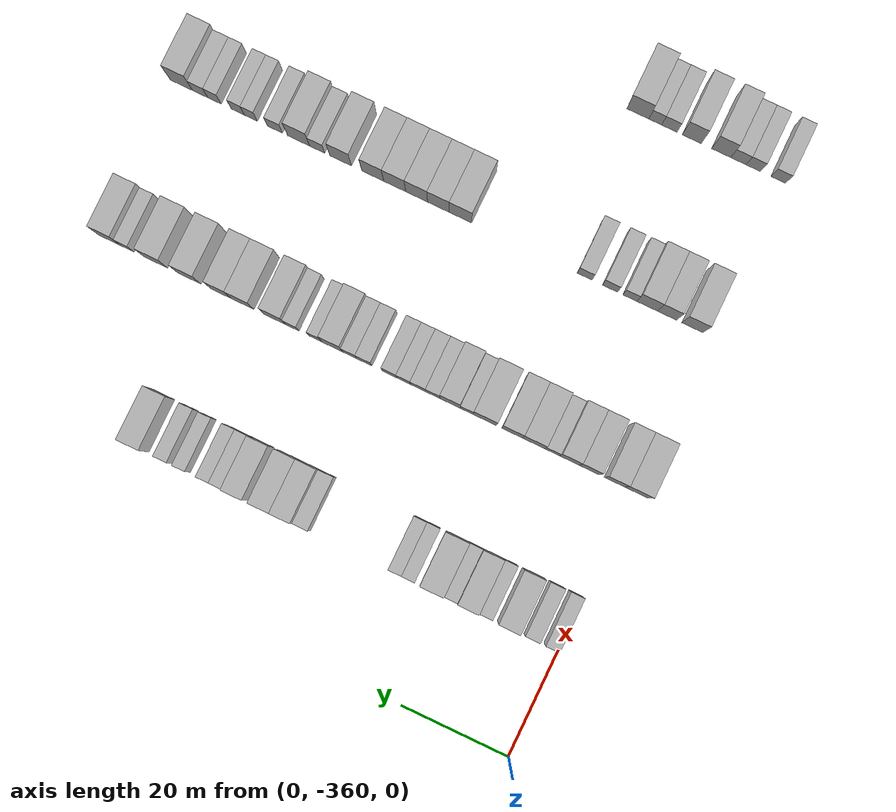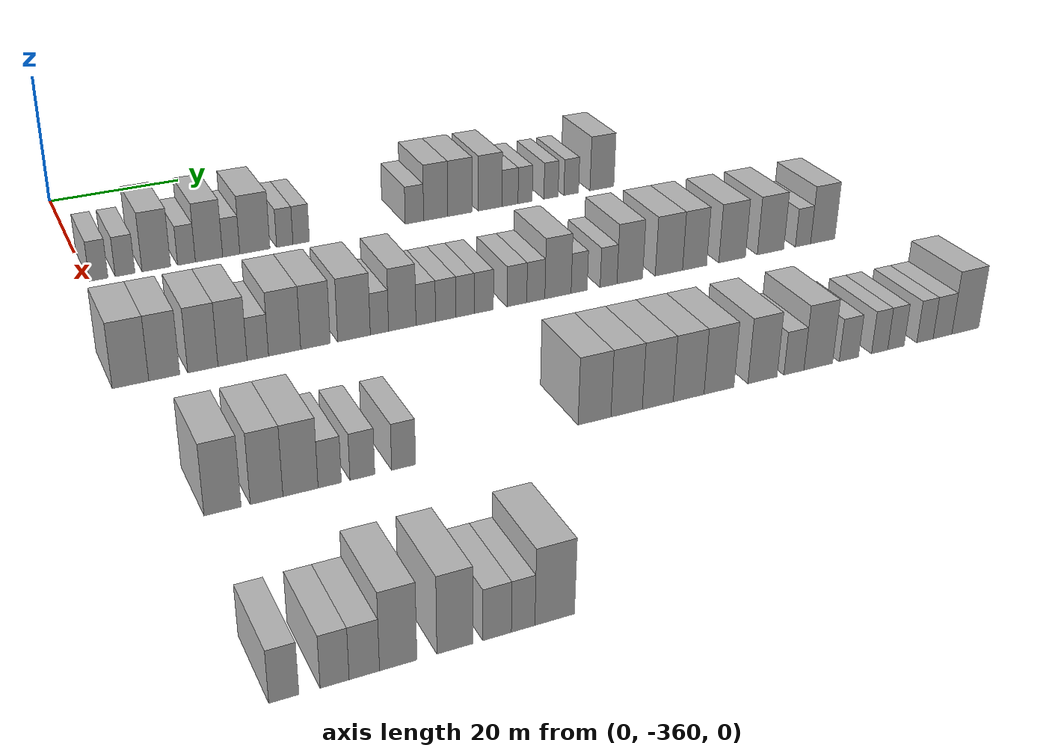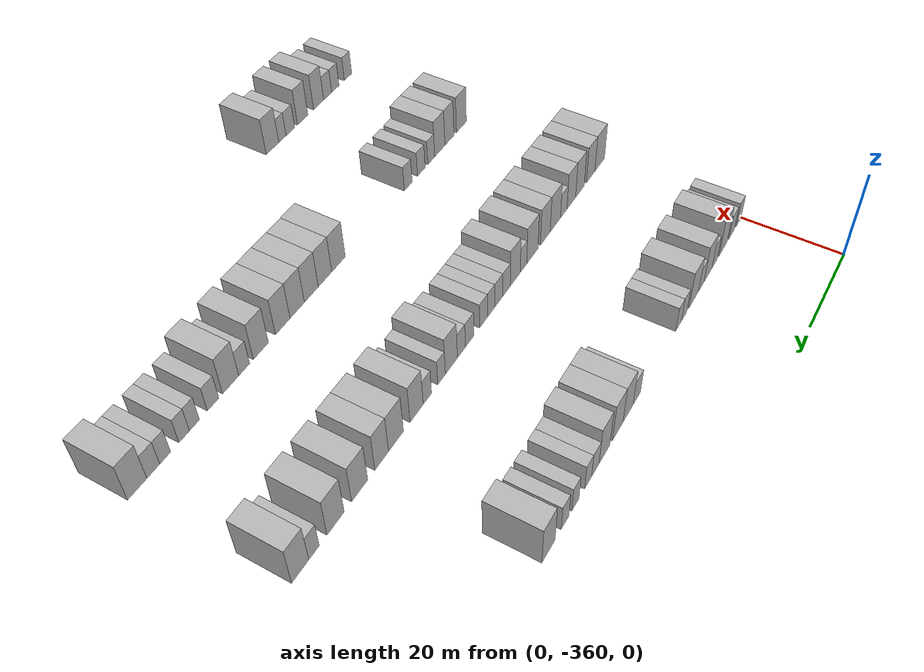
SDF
<sdf version="1.6">
 <world name="default">
  <model name="building_27">
   <static>1</static>
   <pose>25.0000 -358.4939 0 0.000000 0.000000 0.000000</pose>
   <link name="link">
    <pose>0 0 3.00 0 0 0</pose>
    <collision name="collision"><geometry><box><size>10.0000 2.5711 6.0000</size></box></geometry></collision>
    <visual name="visual">
     <cast_shadows>0</cast_shadows>
     <geometry><box><size>10.0000 2.5711 6.0000</size></box></geometry>
     <material>
      <script>
       <uri>model://HANNAS_wall/materials/scripts</uri>
       <uri>model://HANNAS_wall/materials/textures</uri>
       <name>vrc/HANNAS_wall</name>
      </script>
     </material>
    </visual>
   </link>
  </model>
  <model name="building_28">
   <static>1</static>
   <pose>25.0000 -354.8271 0 0.000000 0.000000 0.000000</pose>
   <link name="link">
    <pose>0 0 3.00 0 0 0</pose>
    <collision name="collision"><geometry><box><size>10.0000 2.7625 6.0000</size></box></geometry></collision>
    <visual name="visual">
     <cast_shadows>0</cast_shadows>
     <geometry><box><size>10.0000 2.7625 6.0000</size></box></geometry>
     <material>
      <script>
       <uri>model://HANNAS_wall/materials/scripts</uri>
       <uri>model://HANNAS_wall/materials/textures</uri>
       <name>vrc/HANNAS_wall</name>
      </script>
     </material>
    </visual>
   </link>
  </model>
  <model name="building_29">
   <static>1</static>
   <pose>25.0000 -350.4248 0 0.000000 0.000000 0.000000</pose>
   <link name="link">
    <pose>0 0 4.50 0 0 0</pose>
    <collision name="collision"><geometry><box><size>10.0000 4.0422 9.0000</size></box></geometry></collision>
    <visual name="visual">
     <cast_shadows>0</cast_shadows>
     <geometry><box><size>10.0000 4.0422 9.0000</size></box></geometry>
     <material>
      <script>
       <uri>model://HANNAS_wall/materials/scripts</uri>
       <uri>model://HANNAS_wall/materials/textures</uri>
       <name>vrc/HANNAS_wall</name>
      </script>
     </material>
    </visual>
   </link>
  </model>
  <model name="building_30">
   <static>1</static>
   <pose>25.0000 -346.1269 0 0.000000 0.000000 0.000000</pose>
   <link name="link">
    <pose>0 0 3.00 0 0 0</pose>
    <collision name="collision"><geometry><box><size>10.0000 2.5535 6.0000</size></box></geometry></collision>
    <visual name="visual">
     <cast_shadows>0</cast_shadows>
     <geometry><box><size>10.0000 2.5535 6.0000</size></box></geometry>
     <material>
      <script>
       <uri>model://HANNAS_wall/materials/scripts</uri>
       <uri>model://HANNAS_wall/materials/textures</uri>
       <name>vrc/HANNAS_wall</name>
      </script>
     </material>
    </visual>
   </link>
  </model>
  <model name="building_31">
   <static>1</static>
   <pose>25.0000 -342.8684 0 0.000000 0.000000 0.000000</pose>
   <link name="link">
    <pose>0 0 4.50 0 0 0</pose>
    <collision name="collision"><geometry><box><size>10.0000 3.9636 9.0000</size></box></geometry></collision>
    <visual name="visual">
     <cast_shadows>0</cast_shadows>
     <geometry><box><size>10.0000 3.9636 9.0000</size></box></geometry>
     <material>
      <script>
       <uri>model://HANNAS_wall/materials/scripts</uri>
       <uri>model://HANNAS_wall/materials/textures</uri>
       <name>vrc/HANNAS_wall</name>
      </script>
     </material>
    </visual>
   </link>
  </model>
  <model name="building_32">
   <static>1</static>
   <pose>25.0000 -339.6265 0 0.000000 0.000000 0.000000</pose>
   <link name="link">
    <pose>0 0 3.00 0 0 0</pose>
    <collision name="collision"><geometry><box><size>10.0000 2.5201 6.0000</size></box></geometry></collision>
    <visual name="visual">
     <cast_shadows>0</cast_shadows>
     <geometry><box><size>10.0000 2.5201 6.0000</size></box></geometry>
     <material>
      <script>
       <uri>model://HANNAS_wall/materials/scripts</uri>
       <uri>model://HANNAS_wall/materials/textures</uri>
       <name>vrc/HANNAS_wall</name>
      </script>
     </material>
    </visual>
   </link>
  </model>
  <model name="building_33">
   <static>1</static>
   <pose>25.0000 -336.1304 0 0.000000 0.000000 0.000000</pose>
   <link name="link">
    <pose>0 0 4.50 0 0 0</pose>
    <collision name="collision"><geometry><box><size>10.0000 4.4721 9.0000</size></box></geometry></collision>
    <visual name="visual">
     <cast_shadows>0</cast_shadows>
     <geometry><box><size>10.0000 4.4721 9.0000</size></box></geometry>
     <material>
      <script>
       <uri>model://HANNAS_wall/materials/scripts</uri>
       <uri>model://HANNAS_wall/materials/textures</uri>
       <name>vrc/HANNAS_wall</name>
      </script>
     </material>
    </visual>
   </link>
  </model>
  <model name="building_34">
   <static>1</static>
   <pose>25.0000 -331.6610 0 0.000000 0.000000 0.000000</pose>
   <link name="link">
    <pose>0 0 3.00 0 0 0</pose>
    <collision name="collision"><geometry><box><size>10.0000 2.4667 6.0000</size></box></geometry></collision>
    <visual name="visual">
     <cast_shadows>0</cast_shadows>
     <geometry><box><size>10.0000 2.4667 6.0000</size></box></geometry>
     <material>
      <script>
       <uri>model://HANNAS_wall/materials/scripts</uri>
       <uri>model://HANNAS_wall/materials/textures</uri>
       <name>vrc/HANNAS_wall</name>
      </script>
     </material>
    </visual>
   </link>
  </model>
  <model name="building_35">
   <static>1</static>
   <pose>25.0000 -329.1813 0 0.000000 0.000000 0.000000</pose>
   <link name="link">
    <pose>0 0 3.00 0 0 0</pose>
    <collision name="collision"><geometry><box><size>10.0000 2.4926 6.0000</size></box></geometry></collision>
    <visual name="visual">
     <cast_shadows>0</cast_shadows>
     <geometry><box><size>10.0000 2.4926 6.0000</size></box></geometry>
     <material>
      <script>
       <uri>model://HANNAS_wall/materials/scripts</uri>
       <uri>model://HANNAS_wall/materials/textures</uri>
       <name>vrc/HANNAS_wall</name>
      </script>
     </material>
    </visual>
   </link>
  </model>
  <model name="building_36">
   <static>1</static>
   <pose>25.0000 -311.4867 0 0.000000 0.000000 0.000000</pose>
   <link name="link">
    <pose>0 0 3.00 0 0 0</pose>
    <collision name="collision"><geometry><box><size>10.0000 2.9656 6.0000</size></box></geometry></collision>
    <visual name="visual">
     <cast_shadows>0</cast_shadows>
     <geometry><box><size>10.0000 2.9656 6.0000</size></box></geometry>
     <material>
      <script>
       <uri>model://HANNAS_wall/materials/scripts</uri>
       <uri>model://HANNAS_wall/materials/textures</uri>
       <name>vrc/HANNAS_wall</name>
      </script>
     </material>
    </visual>
   </link>
  </model>
  <model name="building_37">
   <static>1</static>
   <pose>25.0000 -308.0392 0 0.000000 0.000000 0.000000</pose>
   <link name="link">
    <pose>0 0 4.50 0 0 0</pose>
    <collision name="collision"><geometry><box><size>10.0000 3.9294 9.0000</size></box></geometry></collision>
    <visual name="visual">
     <cast_shadows>0</cast_shadows>
     <geometry><box><size>10.0000 3.9294 9.0000</size></box></geometry>
     <material>
      <script>
       <uri>model://HANNAS_wall/materials/scripts</uri>
       <uri>model://HANNAS_wall/materials/textures</uri>
       <name>vrc/HANNAS_wall</name>
      </script>
     </material>
    </visual>
   </link>
  </model>
  <model name="building_38">
   <static>1</static>
   <pose>25.0000 -304.0724 0 0.000000 0.000000 0.000000</pose>
   <link name="link">
    <pose>0 0 4.50 0 0 0</pose>
    <collision name="collision"><geometry><box><size>10.0000 4.0042 9.0000</size></box></geometry></collision>
    <visual name="visual">
     <cast_shadows>0</cast_shadows>
     <geometry><box><size>10.0000 4.0042 9.0000</size></box></geometry>
     <material>
      <script>
       <uri>model://HANNAS_wall/materials/scripts</uri>
       <uri>model://HANNAS_wall/materials/textures</uri>
       <name>vrc/HANNAS_wall</name>
      </script>
     </material>
    </visual>
   </link>
  </model>
  <model name="building_39">
   <static>1</static>
   <pose>25.0000 -299.0777 0 0.000000 0.000000 0.000000</pose>
   <link name="link">
    <pose>0 0 4.50 0 0 0</pose>
    <collision name="collision"><geometry><box><size>10.0000 3.9851 9.0000</size></box></geometry></collision>
    <visual name="visual">
     <cast_shadows>0</cast_shadows>
     <geometry><box><size>10.0000 3.9851 9.0000</size></box></geometry>
     <material>
      <script>
       <uri>model://HANNAS_wall/materials/scripts</uri>
       <uri>model://HANNAS_wall/materials/textures</uri>
       <name>vrc/HANNAS_wall</name>
      </script>
     </material>
    </visual>
   </link>
  </model>
  <model name="building_40">
   <static>1</static>
   <pose>25.0000 -295.7361 0 0.000000 0.000000 0.000000</pose>
   <link name="link">
    <pose>0 0 3.00 0 0 0</pose>
    <collision name="collision"><geometry><box><size>10.0000 2.6982 6.0000</size></box></geometry></collision>
    <visual name="visual">
     <cast_shadows>0</cast_shadows>
     <geometry><box><size>10.0000 2.6982 6.0000</size></box></geometry>
     <material>
      <script>
       <uri>model://HANNAS_wall/materials/scripts</uri>
       <uri>model://HANNAS_wall/materials/textures</uri>
       <name>vrc/HANNAS_wall</name>
      </script>
     </material>
    </visual>
   </link>
  </model>
  <model name="building_41">
   <static>1</static>
   <pose>25.0000 -293.1766 0 0.000000 0.000000 0.000000</pose>
   <link name="link">
    <pose>0 0 3.00 0 0 0</pose>
    <collision name="collision"><geometry><box><size>10.0000 2.4207 6.0000</size></box></geometry></collision>
    <visual name="visual">
     <cast_shadows>0</cast_shadows>
     <geometry><box><size>10.0000 2.4207 6.0000</size></box></geometry>
     <material>
      <script>
       <uri>model://HANNAS_wall/materials/scripts</uri>
       <uri>model://HANNAS_wall/materials/textures</uri>
       <name>vrc/HANNAS_wall</name>
      </script>
     </material>
    </visual>
   </link>
  </model>
  <model name="building_42">
   <static>1</static>
   <pose>25.0000 -288.7385 0 0.000000 0.000000 0.000000</pose>
   <link name="link">
    <pose>0 0 3.00 0 0 0</pose>
    <collision name="collision"><geometry><box><size>10.0000 2.4556 6.0000</size></box></geometry></collision>
    <visual name="visual">
     <cast_shadows>0</cast_shadows>
     <geometry><box><size>10.0000 2.4556 6.0000</size></box></geometry>
     <material>
      <script>
       <uri>model://HANNAS_wall/materials/scripts</uri>
       <uri>model://HANNAS_wall/materials/textures</uri>
       <name>vrc/HANNAS_wall</name>
      </script>
     </material>
    </visual>
   </link>
  </model>
  <model name="building_43">
   <static>1</static>
   <pose>25.0000 -285.2317 0 0.000000 0.000000 0.000000</pose>
   <link name="link">
    <pose>0 0 3.00 0 0 0</pose>
    <collision name="collision"><geometry><box><size>10.0000 2.5578 6.0000</size></box></geometry></collision>
    <visual name="visual">
     <cast_shadows>0</cast_shadows>
     <geometry><box><size>10.0000 2.5578 6.0000</size></box></geometry>
     <material>
      <script>
       <uri>model://HANNAS_wall/materials/scripts</uri>
       <uri>model://HANNAS_wall/materials/textures</uri>
       <name>vrc/HANNAS_wall</name>
      </script>
     </material>
    </visual>
   </link>
  </model>
  <model name="building_44">
   <static>1</static>
   <pose>25.0000 -279.8387 0 0.000000 0.000000 0.000000</pose>
   <link name="link">
    <pose>0 0 4.50 0 0 0</pose>
    <collision name="collision"><geometry><box><size>10.0000 4.2283 9.0000</size></box></geometry></collision>
    <visual name="visual">
     <cast_shadows>0</cast_shadows>
     <geometry><box><size>10.0000 4.2283 9.0000</size></box></geometry>
     <material>
      <script>
       <uri>model://HANNAS_wall/materials/scripts</uri>
       <uri>model://HANNAS_wall/materials/textures</uri>
       <name>vrc/HANNAS_wall</name>
      </script>
     </material>
    </visual>
   </link>
  </model>
  <model name="building_251">
   <static>1</static>
   <pose>55.0000 -360.5442 0 0.000000 0.000000 0.000000</pose>
   <link name="link">
    <pose>0 0 4.50 0 0 0</pose>
    <collision name="collision"><geometry><box><size>10.0000 4.4710 9.0000</size></box></geometry></collision>
    <visual name="visual">
     <cast_shadows>0</cast_shadows>
     <geometry><box><size>10.0000 4.4710 9.0000</size></box></geometry>
     <material>
      <script>
       <uri>model://HANNAS_wall/materials/scripts</uri>
       <uri>model://HANNAS_wall/materials/textures</uri>
       <name>vrc/HANNAS_wall</name>
      </script>
     </material>
    </visual>
   </link>
  </model>
  <model name="building_252">
   <static>1</static>
   <pose>55.0000 -356.3869 0 0.000000 0.000000 0.000000</pose>
   <link name="link">
    <pose>0 0 4.50 0 0 0</pose>
    <collision name="collision"><geometry><box><size>10.0000 3.8437 9.0000</size></box></geometry></collision>
    <visual name="visual">
     <cast_shadows>0</cast_shadows>
     <geometry><box><size>10.0000 3.8437 9.0000</size></box></geometry>
     <material>
      <script>
       <uri>model://HANNAS_wall/materials/scripts</uri>
       <uri>model://HANNAS_wall/materials/textures</uri>
       <name>vrc/HANNAS_wall</name>
      </script>
     </material>
    </visual>
   </link>
  </model>
  <model name="building_253">
   <static>1</static>
   <pose>55.0000 -351.5558 0 0.000000 0.000000 0.000000</pose>
   <link name="link">
    <pose>0 0 4.50 0 0 0</pose>
    <collision name="collision"><geometry><box><size>10.0000 3.8184 9.0000</size></box></geometry></collision>
    <visual name="visual">
     <cast_shadows>0</cast_shadows>
     <geometry><box><size>10.0000 3.8184 9.0000</size></box></geometry>
     <material>
      <script>
       <uri>model://HANNAS_wall/materials/scripts</uri>
       <uri>model://HANNAS_wall/materials/textures</uri>
       <name>vrc/HANNAS_wall</name>
      </script>
     </material>
    </visual>
   </link>
  </model>
  <model name="building_254">
   <static>1</static>
   <pose>55.0000 -347.7819 0 0.000000 0.000000 0.000000</pose>
   <link name="link">
    <pose>0 0 4.50 0 0 0</pose>
    <collision name="collision"><geometry><box><size>10.0000 3.7295 9.0000</size></box></geometry></collision>
    <visual name="visual">
     <cast_shadows>0</cast_shadows>
     <geometry><box><size>10.0000 3.7295 9.0000</size></box></geometry>
     <material>
      <script>
       <uri>model://HANNAS_wall/materials/scripts</uri>
       <uri>model://HANNAS_wall/materials/textures</uri>
       <name>vrc/HANNAS_wall</name>
      </script>
     </material>
    </visual>
   </link>
  </model>
  <model name="building_255">
   <static>1</static>
   <pose>55.0000 -344.5236 0 0.000000 0.000000 0.000000</pose>
   <link name="link">
    <pose>0 0 3.00 0 0 0</pose>
    <collision name="collision"><geometry><box><size>10.0000 2.7870 6.0000</size></box></geometry></collision>
    <visual name="visual">
     <cast_shadows>0</cast_shadows>
     <geometry><box><size>10.0000 2.7870 6.0000</size></box></geometry>
     <material>
      <script>
       <uri>model://HANNAS_wall/materials/scripts</uri>
       <uri>model://HANNAS_wall/materials/textures</uri>
       <name>vrc/HANNAS_wall</name>
      </script>
     </material>
    </visual>
   </link>
  </model>
  <model name="building_256">
   <static>1</static>
   <pose>55.0000 -341.0157 0 0.000000 0.000000 0.000000</pose>
   <link name="link">
    <pose>0 0 4.50 0 0 0</pose>
    <collision name="collision"><geometry><box><size>10.0000 4.2286 9.0000</size></box></geometry></collision>
    <visual name="visual">
     <cast_shadows>0</cast_shadows>
     <geometry><box><size>10.0000 4.2286 9.0000</size></box></geometry>
     <material>
      <script>
       <uri>model://HANNAS_wall/materials/scripts</uri>
       <uri>model://HANNAS_wall/materials/textures</uri>
       <name>vrc/HANNAS_wall</name>
      </script>
     </material>
    </visual>
   </link>
  </model>
  <model name="building_257">
   <static>1</static>
   <pose>55.0000 -336.9286 0 0.000000 0.000000 0.000000</pose>
   <link name="link">
    <pose>0 0 4.50 0 0 0</pose>
    <collision name="collision"><geometry><box><size>10.0000 3.9457 9.0000</size></box></geometry></collision>
    <visual name="visual">
     <cast_shadows>0</cast_shadows>
     <geometry><box><size>10.0000 3.9457 9.0000</size></box></geometry>
     <material>
      <script>
       <uri>model://HANNAS_wall/materials/scripts</uri>
       <uri>model://HANNAS_wall/materials/textures</uri>
       <name>vrc/HANNAS_wall</name>
      </script>
     </material>
    </visual>
   </link>
  </model>
  <model name="building_258">
   <static>1</static>
   <pose>55.0000 -331.7339 0 0.000000 0.000000 0.000000</pose>
   <link name="link">
    <pose>0 0 4.50 0 0 0</pose>
    <collision name="collision"><geometry><box><size>10.0000 4.4437 9.0000</size></box></geometry></collision>
    <visual name="visual">
     <cast_shadows>0</cast_shadows>
     <geometry><box><size>10.0000 4.4437 9.0000</size></box></geometry>
     <material>
      <script>
       <uri>model://HANNAS_wall/materials/scripts</uri>
       <uri>model://HANNAS_wall/materials/textures</uri>
       <name>vrc/HANNAS_wall</name>
      </script>
     </material>
    </visual>
   </link>
  </model>
  <model name="building_259">
   <static>1</static>
   <pose>55.0000 -328.2517 0 0.000000 0.000000 0.000000</pose>
   <link name="link">
    <pose>0 0 3.00 0 0 0</pose>
    <collision name="collision"><geometry><box><size>10.0000 2.5207 6.0000</size></box></geometry></collision>
    <visual name="visual">
     <cast_shadows>0</cast_shadows>
     <geometry><box><size>10.0000 2.5207 6.0000</size></box></geometry>
     <material>
      <script>
       <uri>model://HANNAS_wall/materials/scripts</uri>
       <uri>model://HANNAS_wall/materials/textures</uri>
       <name>vrc/HANNAS_wall</name>
      </script>
     </material>
    </visual>
   </link>
  </model>
  <model name="building_260">
   <static>1</static>
   <pose>55.0000 -325.0816 0 0.000000 0.000000 0.000000</pose>
   <link name="link">
    <pose>0 0 4.50 0 0 0</pose>
    <collision name="collision"><geometry><box><size>10.0000 3.8196 9.0000</size></box></geometry></collision>
    <visual name="visual">
     <cast_shadows>0</cast_shadows>
     <geometry><box><size>10.0000 3.8196 9.0000</size></box></geometry>
     <material>
      <script>
       <uri>model://HANNAS_wall/materials/scripts</uri>
       <uri>model://HANNAS_wall/materials/textures</uri>
       <name>vrc/HANNAS_wall</name>
      </script>
     </material>
    </visual>
   </link>
  </model>
  <model name="building_261">
   <static>1</static>
   <pose>55.0000 -321.7924 0 0.000000 0.000000 0.000000</pose>
   <link name="link">
    <pose>0 0 3.00 0 0 0</pose>
    <collision name="collision"><geometry><box><size>10.0000 2.7588 6.0000</size></box></geometry></collision>
    <visual name="visual">
     <cast_shadows>0</cast_shadows>
     <geometry><box><size>10.0000 2.7588 6.0000</size></box></geometry>
     <material>
      <script>
       <uri>model://HANNAS_wall/materials/scripts</uri>
       <uri>model://HANNAS_wall/materials/textures</uri>
       <name>vrc/HANNAS_wall</name>
      </script>
     </material>
    </visual>
   </link>
  </model>
  <model name="building_262">
   <static>1</static>
   <pose>55.0000 -318.9619 0 0.000000 0.000000 0.000000</pose>
   <link name="link">
    <pose>0 0 3.00 0 0 0</pose>
    <collision name="collision"><geometry><box><size>10.0000 2.9023 6.0000</size></box></geometry></collision>
    <visual name="visual">
     <cast_shadows>0</cast_shadows>
     <geometry><box><size>10.0000 2.9023 6.0000</size></box></geometry>
     <material>
      <script>
       <uri>model://HANNAS_wall/materials/scripts</uri>
       <uri>model://HANNAS_wall/materials/textures</uri>
       <name>vrc/HANNAS_wall</name>
      </script>
     </material>
    </visual>
   </link>
  </model>
  <model name="building_263">
   <static>1</static>
   <pose>55.0000 -316.1959 0 0.000000 0.000000 0.000000</pose>
   <link name="link">
    <pose>0 0 3.00 0 0 0</pose>
    <collision name="collision"><geometry><box><size>10.0000 2.6298 6.0000</size></box></geometry></collision>
    <visual name="visual">
     <cast_shadows>0</cast_shadows>
     <geometry><box><size>10.0000 2.6298 6.0000</size></box></geometry>
     <material>
      <script>
       <uri>model://HANNAS_wall/materials/scripts</uri>
       <uri>model://HANNAS_wall/materials/textures</uri>
       <name>vrc/HANNAS_wall</name>
      </script>
     </material>
    </visual>
   </link>
  </model>
  <model name="building_264">
   <static>1</static>
   <pose>55.0000 -313.4813 0 0.000000 0.000000 0.000000</pose>
   <link name="link">
    <pose>0 0 3.00 0 0 0</pose>
    <collision name="collision"><geometry><box><size>10.0000 2.7992 6.0000</size></box></geometry></collision>
    <visual name="visual">
     <cast_shadows>0</cast_shadows>
     <geometry><box><size>10.0000 2.7992 6.0000</size></box></geometry>
     <material>
      <script>
       <uri>model://HANNAS_wall/materials/scripts</uri>
       <uri>model://HANNAS_wall/materials/textures</uri>
       <name>vrc/HANNAS_wall</name>
      </script>
     </material>
    </visual>
   </link>
  </model>
  <model name="building_265">
   <static>1</static>
   <pose>55.0000 -308.6234 0 0.000000 0.000000 0.000000</pose>
   <link name="link">
    <pose>0 0 3.00 0 0 0</pose>
    <collision name="collision"><geometry><box><size>10.0000 2.9167 6.0000</size></box></geometry></collision>
    <visual name="visual">
     <cast_shadows>0</cast_shadows>
     <geometry><box><size>10.0000 2.9167 6.0000</size></box></geometry>
     <material>
      <script>
       <uri>model://HANNAS_wall/materials/scripts</uri>
       <uri>model://HANNAS_wall/materials/textures</uri>
       <name>vrc/HANNAS_wall</name>
      </script>
     </material>
    </visual>
   </link>
  </model>
  <model name="building_266">
   <static>1</static>
   <pose>55.0000 -305.8129 0 0.000000 0.000000 0.000000</pose>
   <link name="link">
    <pose>0 0 3.00 0 0 0</pose>
    <collision name="collision"><geometry><box><size>10.0000 2.7043 6.0000</size></box></geometry></collision>
    <visual name="visual">
     <cast_shadows>0</cast_shadows>
     <geometry><box><size>10.0000 2.7043 6.0000</size></box></geometry>
     <material>
      <script>
       <uri>model://HANNAS_wall/materials/scripts</uri>
       <uri>model://HANNAS_wall/materials/textures</uri>
       <name>vrc/HANNAS_wall</name>
      </script>
     </material>
    </visual>
   </link>
  </model>
  <model name="building_267">
   <static>1</static>
   <pose>55.0000 -302.4779 0 0.000000 0.000000 0.000000</pose>
   <link name="link">
    <pose>0 0 4.50 0 0 0</pose>
    <collision name="collision"><geometry><box><size>10.0000 3.9658 9.0000</size></box></geometry></collision>
    <visual name="visual">
     <cast_shadows>0</cast_shadows>
     <geometry><box><size>10.0000 3.9658 9.0000</size></box></geometry>
     <material>
      <script>
       <uri>model://HANNAS_wall/materials/scripts</uri>
       <uri>model://HANNAS_wall/materials/textures</uri>
       <name>vrc/HANNAS_wall</name>
      </script>
     </material>
    </visual>
   </link>
  </model>
  <model name="building_268">
   <static>1</static>
   <pose>55.0000 -299.2690 0 0.000000 0.000000 0.000000</pose>
   <link name="link">
    <pose>0 0 3.00 0 0 0</pose>
    <collision name="collision"><geometry><box><size>10.0000 2.4519 6.0000</size></box></geometry></collision>
    <visual name="visual">
     <cast_shadows>0</cast_shadows>
     <geometry><box><size>10.0000 2.4519 6.0000</size></box></geometry>
     <material>
      <script>
       <uri>model://HANNAS_wall/materials/scripts</uri>
       <uri>model://HANNAS_wall/materials/textures</uri>
       <name>vrc/HANNAS_wall</name>
      </script>
     </material>
    </visual>
   </link>
  </model>
  <model name="building_269">
   <static>1</static>
   <pose>55.0000 -294.7347 0 0.000000 0.000000 0.000000</pose>
   <link name="link">
    <pose>0 0 3.00 0 0 0</pose>
    <collision name="collision"><geometry><box><size>10.0000 2.6168 6.0000</size></box></geometry></collision>
    <visual name="visual">
     <cast_shadows>0</cast_shadows>
     <geometry><box><size>10.0000 2.6168 6.0000</size></box></geometry>
     <material>
      <script>
       <uri>model://HANNAS_wall/materials/scripts</uri>
       <uri>model://HANNAS_wall/materials/textures</uri>
       <name>vrc/HANNAS_wall</name>
      </script>
     </material>
    </visual>
   </link>
  </model>
  <model name="building_270">
   <static>1</static>
   <pose>55.0000 -291.4096 0 0.000000 0.000000 0.000000</pose>
   <link name="link">
    <pose>0 0 4.50 0 0 0</pose>
    <collision name="collision"><geometry><box><size>10.0000 4.0334 9.0000</size></box></geometry></collision>
    <visual name="visual">
     <cast_shadows>0</cast_shadows>
     <geometry><box><size>10.0000 4.0334 9.0000</size></box></geometry>
     <material>
      <script>
       <uri>model://HANNAS_wall/materials/scripts</uri>
       <uri>model://HANNAS_wall/materials/textures</uri>
       <name>vrc/HANNAS_wall</name>
      </script>
     </material>
    </visual>
   </link>
  </model>
  <model name="building_271">
   <static>1</static>
   <pose>55.0000 -285.2001 0 0.000000 0.000000 0.000000</pose>
   <link name="link">
    <pose>0 0 4.50 0 0 0</pose>
    <collision name="collision"><geometry><box><size>10.0000 4.3858 9.0000</size></box></geometry></collision>
    <visual name="visual">
     <cast_shadows>0</cast_shadows>
     <geometry><box><size>10.0000 4.3858 9.0000</size></box></geometry>
     <material>
      <script>
       <uri>model://HANNAS_wall/materials/scripts</uri>
       <uri>model://HANNAS_wall/materials/textures</uri>
       <name>vrc/HANNAS_wall</name>
      </script>
     </material>
    </visual>
   </link>
  </model>
  <model name="building_272">
   <static>1</static>
   <pose>55.0000 -281.0429 0 0.000000 0.000000 0.000000</pose>
   <link name="link">
    <pose>0 0 4.50 0 0 0</pose>
    <collision name="collision"><geometry><box><size>10.0000 3.9286 9.0000</size></box></geometry></collision>
    <visual name="visual">
     <cast_shadows>0</cast_shadows>
     <geometry><box><size>10.0000 3.9286 9.0000</size></box></geometry>
     <material>
      <script>
       <uri>model://HANNAS_wall/materials/scripts</uri>
       <uri>model://HANNAS_wall/materials/textures</uri>
       <name>vrc/HANNAS_wall</name>
      </script>
     </material>
    </visual>
   </link>
  </model>
  <model name="building_273">
   <static>1</static>
   <pose>55.0000 -274.8679 0 0.000000 0.000000 0.000000</pose>
   <link name="link">
    <pose>0 0 4.50 0 0 0</pose>
    <collision name="collision"><geometry><box><size>10.0000 4.4213 9.0000</size></box></geometry></collision>
    <visual name="visual">
     <cast_shadows>0</cast_shadows>
     <geometry><box><size>10.0000 4.4213 9.0000</size></box></geometry>
     <material>
      <script>
       <uri>model://HANNAS_wall/materials/scripts</uri>
       <uri>model://HANNAS_wall/materials/textures</uri>
       <name>vrc/HANNAS_wall</name>
      </script>
     </material>
    </visual>
   </link>
  </model>
  <model name="building_274">
   <static>1</static>
   <pose>55.0000 -268.4157 0 0.000000 0.000000 0.000000</pose>
   <link name="link">
    <pose>0 0 4.50 0 0 0</pose>
    <collision name="collision"><geometry><box><size>10.0000 4.4831 9.0000</size></box></geometry></collision>
    <visual name="visual">
     <cast_shadows>0</cast_shadows>
     <geometry><box><size>10.0000 4.4831 9.0000</size></box></geometry>
     <material>
      <script>
       <uri>model://HANNAS_wall/materials/scripts</uri>
       <uri>model://HANNAS_wall/materials/textures</uri>
       <name>vrc/HANNAS_wall</name>
      </script>
     </material>
    </visual>
   </link>
  </model>
  <model name="building_275">
   <static>1</static>
   <pose>55.0000 -262.8561 0 0.000000 0.000000 0.000000</pose>
   <link name="link">
    <pose>0 0 3.00 0 0 0</pose>
    <collision name="collision"><geometry><box><size>10.0000 2.6362 6.0000</size></box></geometry></collision>
    <visual name="visual">
     <cast_shadows>0</cast_shadows>
     <geometry><box><size>10.0000 2.6362 6.0000</size></box></geometry>
     <material>
      <script>
       <uri>model://HANNAS_wall/materials/scripts</uri>
       <uri>model://HANNAS_wall/materials/textures</uri>
       <name>vrc/HANNAS_wall</name>
      </script>
     </material>
    </visual>
   </link>
  </model>
  <model name="building_276">
   <static>1</static>
   <pose>55.0000 -259.4264 0 0.000000 0.000000 0.000000</pose>
   <link name="link">
    <pose>0 0 4.50 0 0 0</pose>
    <collision name="collision"><geometry><box><size>10.0000 4.2232 9.0000</size></box></geometry></collision>
    <visual name="visual">
     <cast_shadows>0</cast_shadows>
     <geometry><box><size>10.0000 4.2232 9.0000</size></box></geometry>
     <material>
      <script>
       <uri>model://HANNAS_wall/materials/scripts</uri>
       <uri>model://HANNAS_wall/materials/textures</uri>
       <name>vrc/HANNAS_wall</name>
      </script>
     </material>
    </visual>
   </link>
  </model>
  <model name="building_484">
   <static>1</static>
   <pose>85.0000 -357.2156 0 0.000000 0.000000 0.000000</pose>
   <link name="link">
    <pose>0 0 4.50 0 0 0</pose>
    <collision name="collision"><geometry><box><size>10.0000 4.0480 9.0000</size></box></geometry></collision>
    <visual name="visual">
     <cast_shadows>0</cast_shadows>
     <geometry><box><size>10.0000 4.0480 9.0000</size></box></geometry>
     <material>
      <script>
       <uri>model://HANNAS_wall/materials/scripts</uri>
       <uri>model://HANNAS_wall/materials/textures</uri>
       <name>vrc/HANNAS_wall</name>
      </script>
     </material>
    </visual>
   </link>
  </model>
  <model name="building_485">
   <static>1</static>
   <pose>85.0000 -352.3689 0 0.000000 0.000000 0.000000</pose>
   <link name="link">
    <pose>0 0 4.50 0 0 0</pose>
    <collision name="collision"><geometry><box><size>10.0000 3.6452 9.0000</size></box></geometry></collision>
    <visual name="visual">
     <cast_shadows>0</cast_shadows>
     <geometry><box><size>10.0000 3.6452 9.0000</size></box></geometry>
     <material>
      <script>
       <uri>model://HANNAS_wall/materials/scripts</uri>
       <uri>model://HANNAS_wall/materials/textures</uri>
       <name>vrc/HANNAS_wall</name>
      </script>
     </material>
    </visual>
   </link>
  </model>
  <model name="building_486">
   <static>1</static>
   <pose>85.0000 -348.5547 0 0.000000 0.000000 0.000000</pose>
   <link name="link">
    <pose>0 0 4.50 0 0 0</pose>
    <collision name="collision"><geometry><box><size>10.0000 3.9834 9.0000</size></box></geometry></collision>
    <visual name="visual">
     <cast_shadows>0</cast_shadows>
     <geometry><box><size>10.0000 3.9834 9.0000</size></box></geometry>
     <material>
      <script>
       <uri>model://HANNAS_wall/materials/scripts</uri>
       <uri>model://HANNAS_wall/materials/textures</uri>
       <name>vrc/HANNAS_wall</name>
      </script>
     </material>
    </visual>
   </link>
  </model>
  <model name="building_487">
   <static>1</static>
   <pose>85.0000 -345.2295 0 0.000000 0.000000 0.000000</pose>
   <link name="link">
    <pose>0 0 3.00 0 0 0</pose>
    <collision name="collision"><geometry><box><size>10.0000 2.6670 6.0000</size></box></geometry></collision>
    <visual name="visual">
     <cast_shadows>0</cast_shadows>
     <geometry><box><size>10.0000 2.6670 6.0000</size></box></geometry>
     <material>
      <script>
       <uri>model://HANNAS_wall/materials/scripts</uri>
       <uri>model://HANNAS_wall/materials/textures</uri>
       <name>vrc/HANNAS_wall</name>
      </script>
     </material>
    </visual>
   </link>
  </model>
  <model name="building_488">
   <static>1</static>
   <pose>85.0000 -341.4495 0 0.000000 0.000000 0.000000</pose>
   <link name="link">
    <pose>0 0 3.00 0 0 0</pose>
    <collision name="collision"><geometry><box><size>10.0000 2.8930 6.0000</size></box></geometry></collision>
    <visual name="visual">
     <cast_shadows>0</cast_shadows>
     <geometry><box><size>10.0000 2.8930 6.0000</size></box></geometry>
     <material>
      <script>
       <uri>model://HANNAS_wall/materials/scripts</uri>
       <uri>model://HANNAS_wall/materials/textures</uri>
       <name>vrc/HANNAS_wall</name>
      </script>
     </material>
    </visual>
   </link>
  </model>
  <model name="building_489">
   <static>1</static>
   <pose>85.0000 -336.5812 0 0.000000 0.000000 0.000000</pose>
   <link name="link">
    <pose>0 0 3.00 0 0 0</pose>
    <collision name="collision"><geometry><box><size>10.0000 2.8436 6.0000</size></box></geometry></collision>
    <visual name="visual">
     <cast_shadows>0</cast_shadows>
     <geometry><box><size>10.0000 2.8436 6.0000</size></box></geometry>
     <material>
      <script>
       <uri>model://HANNAS_wall/materials/scripts</uri>
       <uri>model://HANNAS_wall/materials/textures</uri>
       <name>vrc/HANNAS_wall</name>
      </script>
     </material>
    </visual>
   </link>
  </model>
  <model name="building_490">
   <static>1</static>
   <pose>85.0000 -312.6605 0 0.000000 0.000000 0.000000</pose>
   <link name="link">
    <pose>0 0 4.50 0 0 0</pose>
    <collision name="collision"><geometry><box><size>10.0000 4.3326 9.0000</size></box></geometry></collision>
    <visual name="visual">
     <cast_shadows>0</cast_shadows>
     <geometry><box><size>10.0000 4.3326 9.0000</size></box></geometry>
     <material>
      <script>
       <uri>model://HANNAS_wall/materials/scripts</uri>
       <uri>model://HANNAS_wall/materials/textures</uri>
       <name>vrc/HANNAS_wall</name>
      </script>
     </material>
    </visual>
   </link>
  </model>
  <model name="building_491">
   <static>1</static>
   <pose>85.0000 -308.3959 0 0.000000 0.000000 0.000000</pose>
   <link name="link">
    <pose>0 0 4.50 0 0 0</pose>
    <collision name="collision"><geometry><box><size>10.0000 4.1966 9.0000</size></box></geometry></collision>
    <visual name="visual">
     <cast_shadows>0</cast_shadows>
     <geometry><box><size>10.0000 4.1966 9.0000</size></box></geometry>
     <material>
      <script>
       <uri>model://HANNAS_wall/materials/scripts</uri>
       <uri>model://HANNAS_wall/materials/textures</uri>
       <name>vrc/HANNAS_wall</name>
      </script>
     </material>
    </visual>
   </link>
  </model>
  <model name="building_492">
   <static>1</static>
   <pose>85.0000 -304.1832 0 0.000000 0.000000 0.000000</pose>
   <link name="link">
    <pose>0 0 4.50 0 0 0</pose>
    <collision name="collision"><geometry><box><size>10.0000 4.2288 9.0000</size></box></geometry></collision>
    <visual name="visual">
     <cast_shadows>0</cast_shadows>
     <geometry><box><size>10.0000 4.2288 9.0000</size></box></geometry>
     <material>
      <script>
       <uri>model://HANNAS_wall/materials/scripts</uri>
       <uri>model://HANNAS_wall/materials/textures</uri>
       <name>vrc/HANNAS_wall</name>
      </script>
     </material>
    </visual>
   </link>
  </model>
  <model name="building_493">
   <static>1</static>
   <pose>85.0000 -299.9378 0 0.000000 0.000000 0.000000</pose>
   <link name="link">
    <pose>0 0 4.50 0 0 0</pose>
    <collision name="collision"><geometry><box><size>10.0000 4.2619 9.0000</size></box></geometry></collision>
    <visual name="visual">
     <cast_shadows>0</cast_shadows>
     <geometry><box><size>10.0000 4.2619 9.0000</size></box></geometry>
     <material>
      <script>
       <uri>model://HANNAS_wall/materials/scripts</uri>
       <uri>model://HANNAS_wall/materials/textures</uri>
       <name>vrc/HANNAS_wall</name>
      </script>
     </material>
    </visual>
   </link>
  </model>
  <model name="building_494">
   <static>1</static>
   <pose>85.0000 -295.6981 0 0.000000 0.000000 0.000000</pose>
   <link name="link">
    <pose>0 0 4.50 0 0 0</pose>
    <collision name="collision"><geometry><box><size>10.0000 4.2176 9.0000</size></box></geometry></collision>
    <visual name="visual">
     <cast_shadows>0</cast_shadows>
     <geometry><box><size>10.0000 4.2176 9.0000</size></box></geometry>
     <material>
      <script>
       <uri>model://HANNAS_wall/materials/scripts</uri>
       <uri>model://HANNAS_wall/materials/textures</uri>
       <name>vrc/HANNAS_wall</name>
      </script>
     </material>
    </visual>
   </link>
  </model>
  <model name="building_495">
   <static>1</static>
   <pose>85.0000 -289.4891 0 0.000000 0.000000 0.000000</pose>
   <link name="link">
    <pose>0 0 4.50 0 0 0</pose>
    <collision name="collision"><geometry><box><size>10.0000 4.2004 9.0000</size></box></geometry></collision>
    <visual name="visual">
     <cast_shadows>0</cast_shadows>
     <geometry><box><size>10.0000 4.2004 9.0000</size></box></geometry>
     <material>
      <script>
       <uri>model://HANNAS_wall/materials/scripts</uri>
       <uri>model://HANNAS_wall/materials/textures</uri>
       <name>vrc/HANNAS_wall</name>
      </script>
     </material>
    </visual>
   </link>
  </model>
  <model name="building_496">
   <static>1</static>
   <pose>85.0000 -284.9186 0 0.000000 0.000000 0.000000</pose>
   <link name="link">
    <pose>0 0 3.00 0 0 0</pose>
    <collision name="collision"><geometry><box><size>10.0000 2.9406 6.0000</size></box></geometry></collision>
    <visual name="visual">
     <cast_shadows>0</cast_shadows>
     <geometry><box><size>10.0000 2.9406 6.0000</size></box></geometry>
     <material>
      <script>
       <uri>model://HANNAS_wall/materials/scripts</uri>
       <uri>model://HANNAS_wall/materials/textures</uri>
       <name>vrc/HANNAS_wall</name>
      </script>
     </material>
    </visual>
   </link>
  </model>
  <model name="building_497">
   <static>1</static>
   <pose>85.0000 -281.3130 0 0.000000 0.000000 0.000000</pose>
   <link name="link">
    <pose>0 0 4.50 0 0 0</pose>
    <collision name="collision"><geometry><box><size>10.0000 4.2707 9.0000</size></box></geometry></collision>
    <visual name="visual">
     <cast_shadows>0</cast_shadows>
     <geometry><box><size>10.0000 4.2707 9.0000</size></box></geometry>
     <material>
      <script>
       <uri>model://HANNAS_wall/materials/scripts</uri>
       <uri>model://HANNAS_wall/materials/textures</uri>
       <name>vrc/HANNAS_wall</name>
      </script>
     </material>
    </visual>
   </link>
  </model>
  <model name="building_498">
   <static>1</static>
   <pose>85.0000 -276.7160 0 0.000000 0.000000 0.000000</pose>
   <link name="link">
    <pose>0 0 3.00 0 0 0</pose>
    <collision name="collision"><geometry><box><size>10.0000 2.9231 6.0000</size></box></geometry></collision>
    <visual name="visual">
     <cast_shadows>0</cast_shadows>
     <geometry><box><size>10.0000 2.9231 6.0000</size></box></geometry>
     <material>
      <script>
       <uri>model://HANNAS_wall/materials/scripts</uri>
       <uri>model://HANNAS_wall/materials/textures</uri>
       <name>vrc/HANNAS_wall</name>
      </script>
     </material>
    </visual>
   </link>
  </model>
  <model name="building_499">
   <static>1</static>
   <pose>85.0000 -272.0086 0 0.000000 0.000000 0.000000</pose>
   <link name="link">
    <pose>0 0 3.00 0 0 0</pose>
    <collision name="collision"><geometry><box><size>10.0000 2.4918 6.0000</size></box></geometry></collision>
    <visual name="visual">
     <cast_shadows>0</cast_shadows>
     <geometry><box><size>10.0000 2.4918 6.0000</size></box></geometry>
     <material>
      <script>
       <uri>model://HANNAS_wall/materials/scripts</uri>
       <uri>model://HANNAS_wall/materials/textures</uri>
       <name>vrc/HANNAS_wall</name>
      </script>
     </material>
    </visual>
   </link>
  </model>
  <model name="building_500">
   <static>1</static>
   <pose>85.0000 -269.4835 0 0.000000 0.000000 0.000000</pose>
   <link name="link">
    <pose>0 0 3.00 0 0 0</pose>
    <collision name="collision"><geometry><box><size>10.0000 2.5584 6.0000</size></box></geometry></collision>
    <visual name="visual">
     <cast_shadows>0</cast_shadows>
     <geometry><box><size>10.0000 2.5584 6.0000</size></box></geometry>
     <material>
      <script>
       <uri>model://HANNAS_wall/materials/scripts</uri>
       <uri>model://HANNAS_wall/materials/textures</uri>
       <name>vrc/HANNAS_wall</name>
      </script>
     </material>
    </visual>
   </link>
  </model>
  <model name="building_501">
   <static>1</static>
   <pose>85.0000 -264.9169 0 0.000000 0.000000 0.000000</pose>
   <link name="link">
    <pose>0 0 3.00 0 0 0</pose>
    <collision name="collision"><geometry><box><size>10.0000 2.5747 6.0000</size></box></geometry></collision>
    <visual name="visual">
     <cast_shadows>0</cast_shadows>
     <geometry><box><size>10.0000 2.5747 6.0000</size></box></geometry>
     <material>
      <script>
       <uri>model://HANNAS_wall/materials/scripts</uri>
       <uri>model://HANNAS_wall/materials/textures</uri>
       <name>vrc/HANNAS_wall</name>
      </script>
     </material>
    </visual>
   </link>
  </model>
  <model name="building_502">
   <static>1</static>
   <pose>85.0000 -262.1335 0 0.000000 0.000000 0.000000</pose>
   <link name="link">
    <pose>0 0 3.00 0 0 0</pose>
    <collision name="collision"><geometry><box><size>10.0000 2.9921 6.0000</size></box></geometry></collision>
    <visual name="visual">
     <cast_shadows>0</cast_shadows>
     <geometry><box><size>10.0000 2.9921 6.0000</size></box></geometry>
     <material>
      <script>
       <uri>model://HANNAS_wall/materials/scripts</uri>
       <uri>model://HANNAS_wall/materials/textures</uri>
       <name>vrc/HANNAS_wall</name>
      </script>
     </material>
    </visual>
   </link>
  </model>
  <model name="building_503">
   <static>1</static>
   <pose>85.0000 -258.4595 0 0.000000 0.000000 0.000000</pose>
   <link name="link">
    <pose>0 0 4.50 0 0 0</pose>
    <collision name="collision"><geometry><box><size>10.0000 4.3560 9.0000</size></box></geometry></collision>
    <visual name="visual">
     <cast_shadows>0</cast_shadows>
     <geometry><box><size>10.0000 4.3560 9.0000</size></box></geometry>
     <material>
      <script>
       <uri>model://HANNAS_wall/materials/scripts</uri>
       <uri>model://HANNAS_wall/materials/textures</uri>
       <name>vrc/HANNAS_wall</name>
      </script>
     </material>
    </visual>
   </link>
  </model>
  <model name="building_707">
   <static>1</static>
   <pose>115.0000 -359.7607 0 0.000000 0.000000 0.000000</pose>
   <link name="link">
    <pose>0 0 3.00 0 0 0</pose>
    <collision name="collision"><geometry><box><size>10.0000 2.8185 6.0000</size></box></geometry></collision>
    <visual name="visual">
     <cast_shadows>0</cast_shadows>
     <geometry><box><size>10.0000 2.8185 6.0000</size></box></geometry>
     <material>
      <script>
       <uri>model://HANNAS_wall/materials/scripts</uri>
       <uri>model://HANNAS_wall/materials/textures</uri>
       <name>vrc/HANNAS_wall</name>
      </script>
     </material>
    </visual>
   </link>
  </model>
  <model name="building_708">
   <static>1</static>
   <pose>115.0000 -354.9661 0 0.000000 0.000000 0.000000</pose>
   <link name="link">
    <pose>0 0 3.00 0 0 0</pose>
    <collision name="collision"><geometry><box><size>10.0000 2.7708 6.0000</size></box></geometry></collision>
    <visual name="visual">
     <cast_shadows>0</cast_shadows>
     <geometry><box><size>10.0000 2.7708 6.0000</size></box></geometry>
     <material>
      <script>
       <uri>model://HANNAS_wall/materials/scripts</uri>
       <uri>model://HANNAS_wall/materials/textures</uri>
       <name>vrc/HANNAS_wall</name>
      </script>
     </material>
    </visual>
   </link>
  </model>
  <model name="building_709">
   <static>1</static>
   <pose>115.0000 -352.1075 0 0.000000 0.000000 0.000000</pose>
   <link name="link">
    <pose>0 0 3.00 0 0 0</pose>
    <collision name="collision"><geometry><box><size>10.0000 2.9463 6.0000</size></box></geometry></collision>
    <visual name="visual">
     <cast_shadows>0</cast_shadows>
     <geometry><box><size>10.0000 2.9463 6.0000</size></box></geometry>
     <material>
      <script>
       <uri>model://HANNAS_wall/materials/scripts</uri>
       <uri>model://HANNAS_wall/materials/textures</uri>
       <name>vrc/HANNAS_wall</name>
      </script>
     </material>
    </visual>
   </link>
  </model>
  <model name="building_710">
   <static>1</static>
   <pose>115.0000 -348.7928 0 0.000000 0.000000 0.000000</pose>
   <link name="link">
    <pose>0 0 4.50 0 0 0</pose>
    <collision name="collision"><geometry><box><size>10.0000 3.6831 9.0000</size></box></geometry></collision>
    <visual name="visual">
     <cast_shadows>0</cast_shadows>
     <geometry><box><size>10.0000 3.6831 9.0000</size></box></geometry>
     <material>
      <script>
       <uri>model://HANNAS_wall/materials/scripts</uri>
       <uri>model://HANNAS_wall/materials/textures</uri>
       <name>vrc/HANNAS_wall</name>
      </script>
     </material>
    </visual>
   </link>
  </model>
  <model name="building_711">
   <static>1</static>
   <pose>115.0000 -343.1169 0 0.000000 0.000000 0.000000</pose>
   <link name="link">
    <pose>0 0 4.50 0 0 0</pose>
    <collision name="collision"><geometry><box><size>10.0000 3.6687 9.0000</size></box></geometry></collision>
    <visual name="visual">
     <cast_shadows>0</cast_shadows>
     <geometry><box><size>10.0000 3.6687 9.0000</size></box></geometry>
     <material>
      <script>
       <uri>model://HANNAS_wall/materials/scripts</uri>
       <uri>model://HANNAS_wall/materials/textures</uri>
       <name>vrc/HANNAS_wall</name>
      </script>
     </material>
    </visual>
   </link>
  </model>
  <model name="building_712">
   <static>1</static>
   <pose>115.0000 -338.7985 0 0.000000 0.000000 0.000000</pose>
   <link name="link">
    <pose>0 0 3.00 0 0 0</pose>
    <collision name="collision"><geometry><box><size>10.0000 2.9681 6.0000</size></box></geometry></collision>
    <visual name="visual">
     <cast_shadows>0</cast_shadows>
     <geometry><box><size>10.0000 2.9681 6.0000</size></box></geometry>
     <material>
      <script>
       <uri>model://HANNAS_wall/materials/scripts</uri>
       <uri>model://HANNAS_wall/materials/textures</uri>
       <name>vrc/HANNAS_wall</name>
      </script>
     </material>
    </visual>
   </link>
  </model>
  <model name="building_713">
   <static>1</static>
   <pose>115.0000 -336.0812 0 0.000000 0.000000 0.000000</pose>
   <link name="link">
    <pose>0 0 3.00 0 0 0</pose>
    <collision name="collision"><geometry><box><size>10.0000 2.4666 6.0000</size></box></geometry></collision>
    <visual name="visual">
     <cast_shadows>0</cast_shadows>
     <geometry><box><size>10.0000 2.4666 6.0000</size></box></geometry>
     <material>
      <script>
       <uri>model://HANNAS_wall/materials/scripts</uri>
       <uri>model://HANNAS_wall/materials/textures</uri>
       <name>vrc/HANNAS_wall</name>
      </script>
     </material>
    </visual>
   </link>
  </model>
  <model name="building_714">
   <static>1</static>
   <pose>115.0000 -332.7298 0 0.000000 0.000000 0.000000</pose>
   <link name="link">
    <pose>0 0 4.50 0 0 0</pose>
    <collision name="collision"><geometry><box><size>10.0000 4.2361 9.0000</size></box></geometry></collision>
    <visual name="visual">
     <cast_shadows>0</cast_shadows>
     <geometry><box><size>10.0000 4.2361 9.0000</size></box></geometry>
     <material>
      <script>
       <uri>model://HANNAS_wall/materials/scripts</uri>
       <uri>model://HANNAS_wall/materials/textures</uri>
       <name>vrc/HANNAS_wall</name>
      </script>
     </material>
    </visual>
   </link>
  </model>
 </world>
</sdf>
